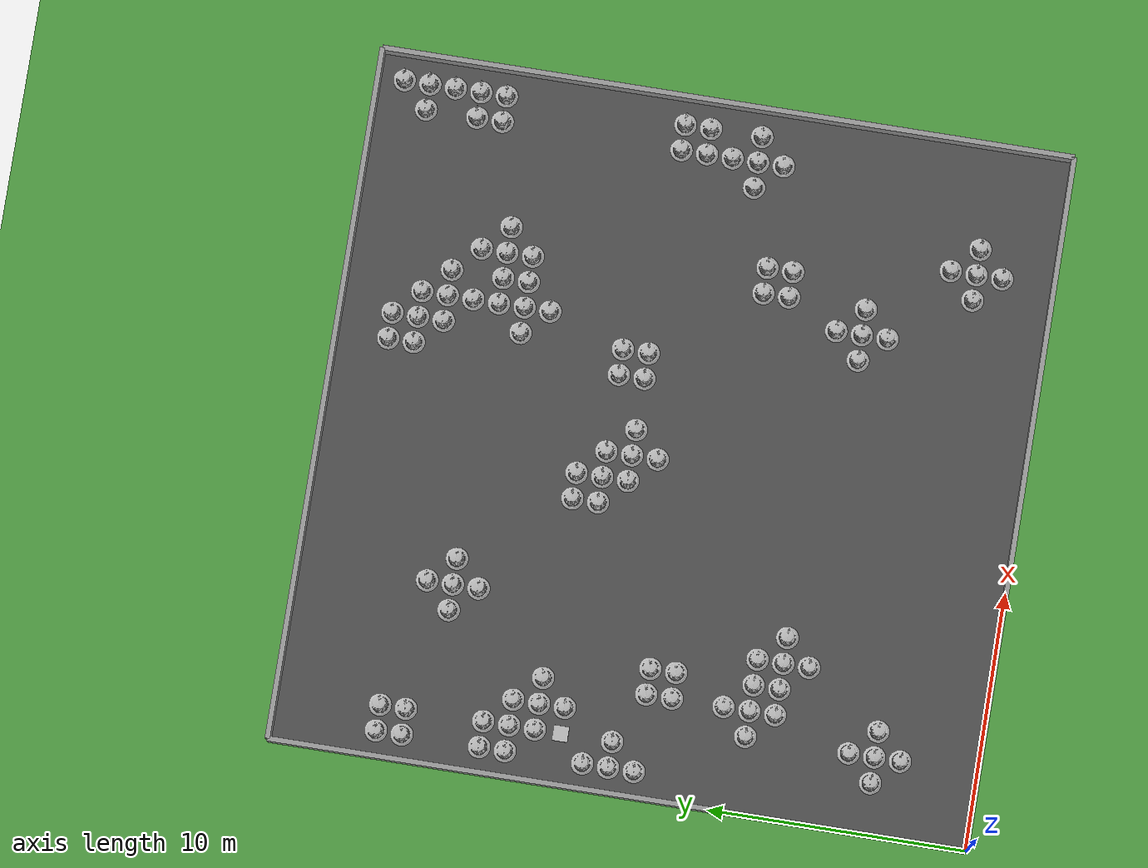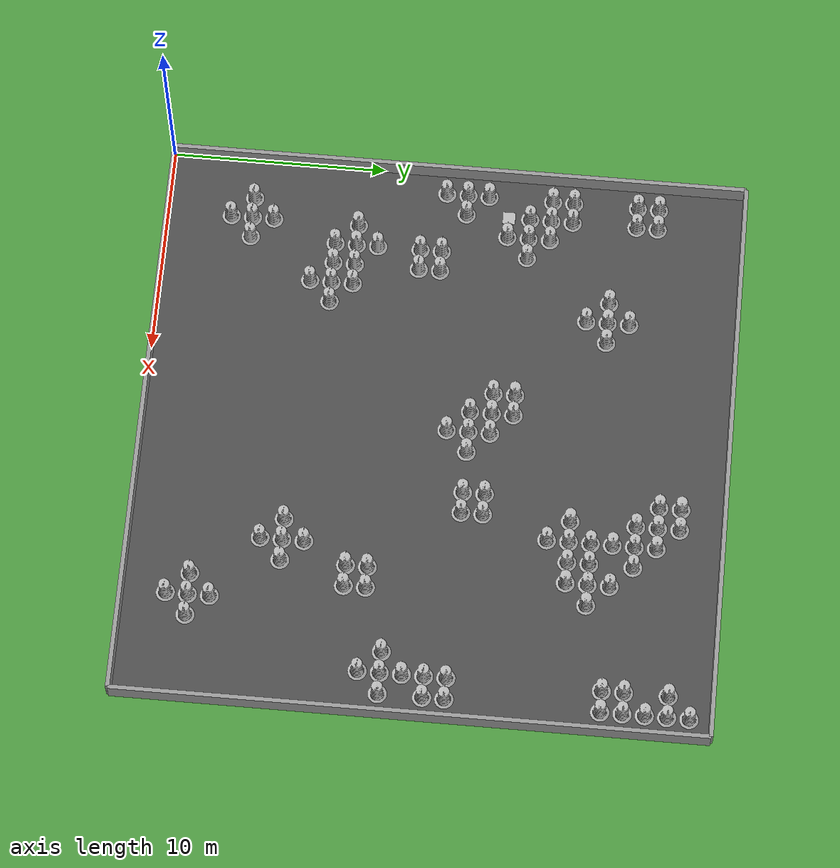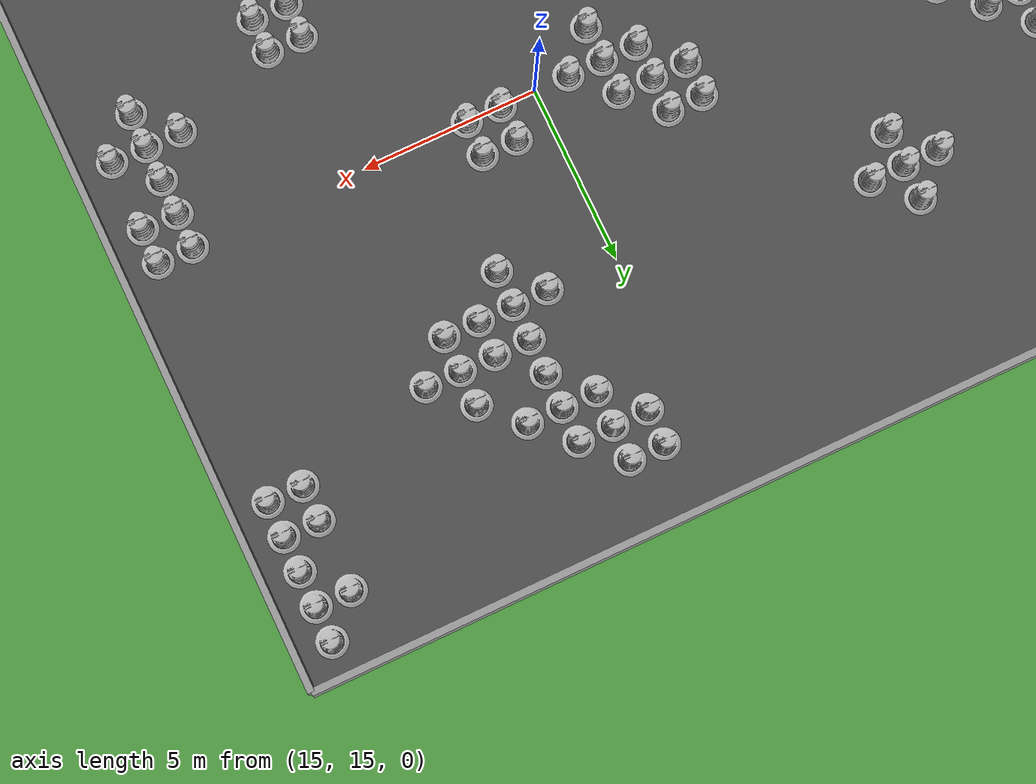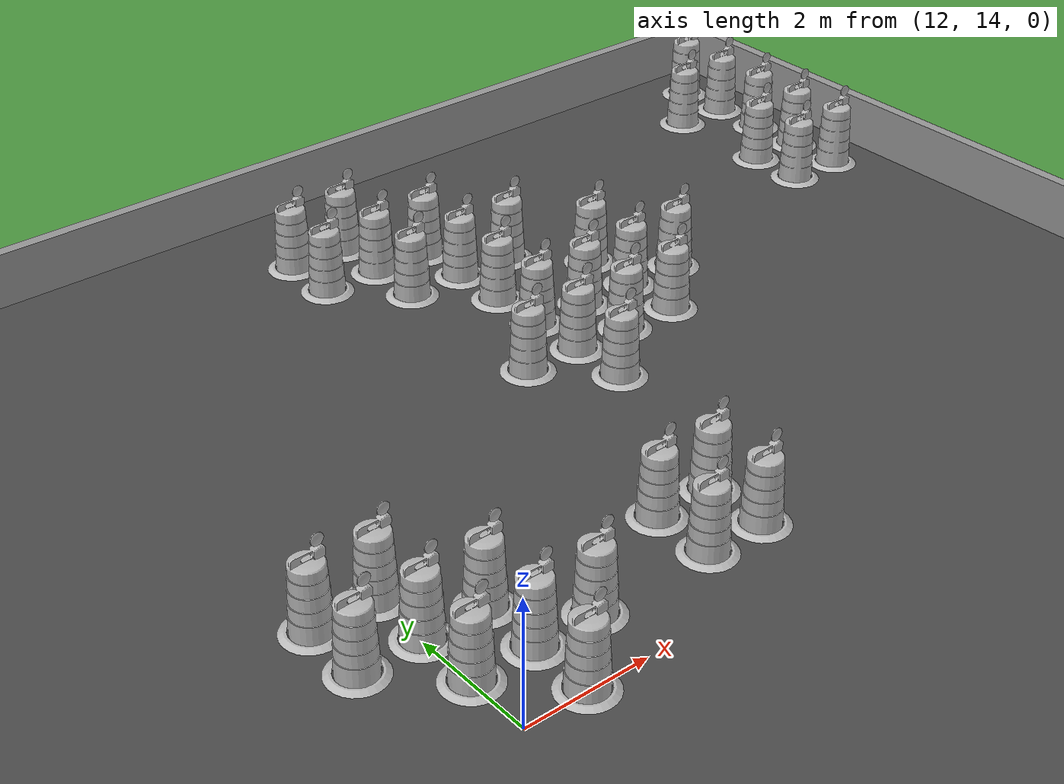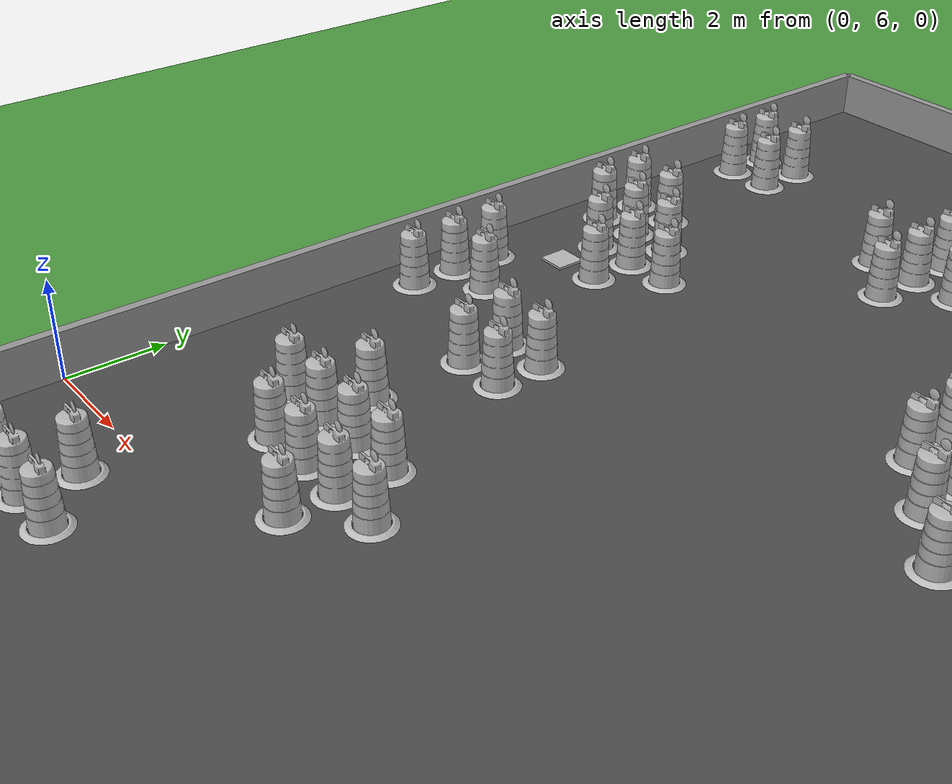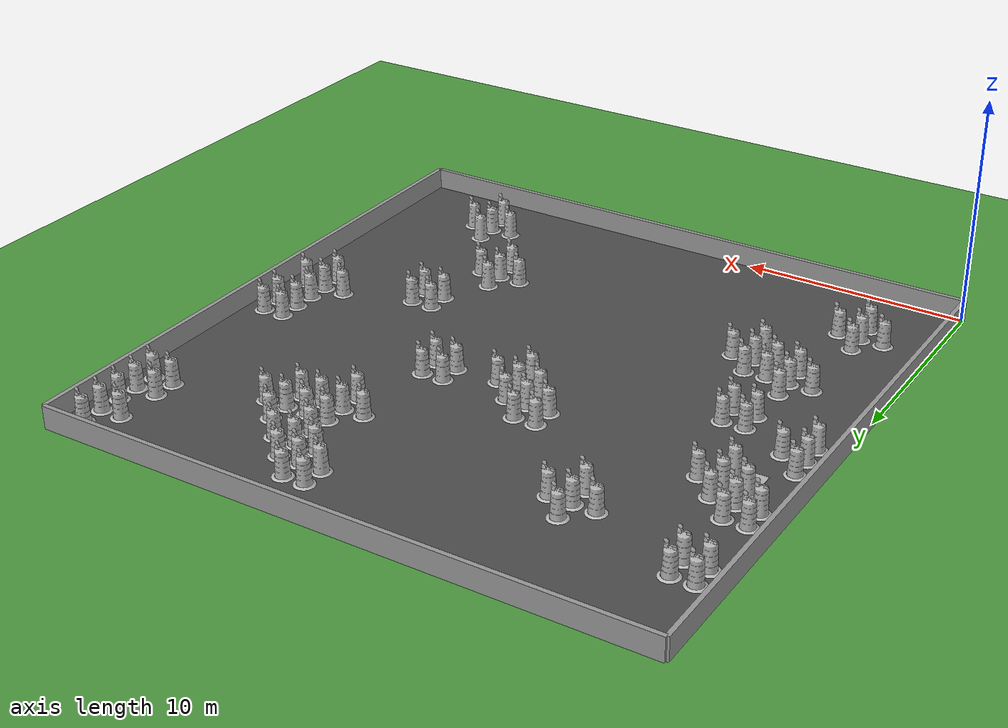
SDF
<sdf version="1.4">
 <world name="default">
  <model name="vrc_driving_terrain">
   <static>1</static>
   <link name="grass_plane">
    <visual name="visual_0">
     <cast_shadows>0</cast_shadows>
     <geometry><plane><normal>0 0 1</normal><size>150 150</size></plane></geometry>
     <material>
      <script>
       <uri>model://vrc_driving_terrain/materials/scripts</uri>
       <uri>model://vrc_driving_terrain/materials/textures</uri>
       <name>vrc/grass</name>
      </script>
     </material>
    </visual>
   </link>
   <pose>0 0 0.01 0 -0 0</pose>
  </model>
  <include><uri>model://ground_plane</uri></include>
  <include><uri>model://sun</uri></include>
  <plugin filename="librotors_gazebo_ros_interface_plugin.so" name="ros_interface_plugin"/>
  <spherical_coordinates>
   <surface_model>EARTH_WGS84</surface_model>
   <latitude_deg>47.3667</latitude_deg>
   <longitude_deg>8.5500</longitude_deg>
   <elevation>500.0</elevation>
   <heading_deg>0</heading_deg>
  </spherical_coordinates>
  <physics type="ode">
   <ode>
    <solver><type>quick</type><iters>1000</iters><sor>1.3</sor></solver>
    <constraints>
     <cfm>0</cfm>
     <erp>0.2</erp>
     <contact_max_correcting_vel>100</contact_max_correcting_vel>
     <contact_surface_layer>0.001</contact_surface_layer>
    </constraints>
   </ode>
   <max_step_size>0.01</max_step_size>
   <real_time_factor>1</real_time_factor>
   <real_time_update_rate>100</real_time_update_rate>
   <gravity>0 0 -9.8</gravity>
  </physics>
  <model name="box_target_green">
   <static>1</static>
   <link name="link">
    <pose>2 16 0 0 0 0</pose>
    <collision name="collision"><geometry><box><size>6 6 2</size></box></geometry></collision>
    <visual name="visual">
     <geometry>
      <mesh><uri>model://box_target_green/meshes/mesh.dae</uri><scale>0.1 0.1 0.1</scale></mesh>
     </geometry>
    </visual>
   </link>
  </model>
  <model name="grey_wall">
   <static>1</static>
   <link name="link">
    <visual name="visual">
     <cast_shadows>0</cast_shadows>
     <geometry><box><size>27 0.2 2</size></box></geometry>
     <material>
      <script>
       <uri>model://grey_wall/materials/scripts</uri>
       <uri>model://grey_wall/materials/textures</uri>
       <name>vrc/grey_wall</name>
      </script>
     </material>
    </visual>
   </link>
   <pose>13.5 0 0 0 0 0</pose>
  </model>
  <model name="grey_wall">
   <static>1</static>
   <link name="link">
    <visual name="visual">
     <cast_shadows>0</cast_shadows>
     <geometry><box><size>27 0.2 2</size></box></geometry>
     <material>
      <script>
       <uri>model://grey_wall/materials/scripts</uri>
       <uri>model://grey_wall/materials/textures</uri>
       <name>vrc/grey_wall</name>
      </script>
     </material>
    </visual>
   </link>
   <pose>0 13.5 0 0 0 1.57079632679</pose>
  </model>
  <model name="grey_wall">
   <static>1</static>
   <link name="link">
    <visual name="visual">
     <cast_shadows>0</cast_shadows>
     <geometry><box><size>27 0.2 2</size></box></geometry>
     <material>
      <script>
       <uri>model://grey_wall/materials/scripts</uri>
       <uri>model://grey_wall/materials/textures</uri>
       <name>vrc/grey_wall</name>
      </script>
     </material>
    </visual>
   </link>
   <pose>27 13.5 0 0 0 -1.57079632679</pose>
  </model>
  <model name="grey_wall">
   <static>1</static>
   <link name="link">
    <visual name="visual">
     <cast_shadows>0</cast_shadows>
     <geometry><box><size>27 0.2 2</size></box></geometry>
     <material>
      <script>
       <uri>model://grey_wall/materials/scripts</uri>
       <uri>model://grey_wall/materials/textures</uri>
       <name>vrc/grey_wall</name>
      </script>
     </material>
    </visual>
   </link>
   <pose>13.5 27 0 0 0 3.14159265359</pose>
  </model>
  <model name="asphalt_plane">
   <static>1</static>
   <link name="link">
    <visual name="visual">
     <cast_shadows>0</cast_shadows>
     <geometry><box><size>27 27 0.1</size></box></geometry>
     <material>
      <script>
       <uri>model://asphalt_plane/materials/scripts</uri>
       <uri>model://asphalt_plane/materials/textures</uri>
       <name>vrc/asphalt</name>
      </script>
     </material>
    </visual>
   </link>
   <pose>13.5 13.5 0 0 0 0</pose>
  </model>
  <model name="Construction Barrel">
   <link name="link">
    <collision name="collision">
     <geometry>
      <mesh><uri>model://construction_barrel/meshes/construction_barrel.dae</uri><scale>1 1 1</scale></mesh>
     </geometry>
    </collision>
    <visual name="visual">
     <geometry><mesh><uri>model://construction_barrel/meshes/construction_barrel.dae</uri></mesh></geometry>
    </visual>
   </link>
   <pose>1 13 0 0 0 0</pose>
   <static>1</static>
  </model>
  <model name="Construction Barrel">
   <link name="link">
    <collision name="collision">
     <geometry>
      <mesh><uri>model://construction_barrel/meshes/construction_barrel.dae</uri><scale>1 1 1</scale></mesh>
     </geometry>
    </collision>
    <visual name="visual">
     <geometry><mesh><uri>model://construction_barrel/meshes/construction_barrel.dae</uri></mesh></geometry>
    </visual>
   </link>
   <pose>1 14 0 0 0 0</pose>
   <static>1</static>
  </model>
  <model name="Construction Barrel">
   <link name="link">
    <collision name="collision">
     <geometry>
      <mesh><uri>model://construction_barrel/meshes/construction_barrel.dae</uri><scale>1 1 1</scale></mesh>
     </geometry>
    </collision>
    <visual name="visual">
     <geometry><mesh><uri>model://construction_barrel/meshes/construction_barrel.dae</uri></mesh></geometry>
    </visual>
   </link>
   <pose>1 15 0 0 0 0</pose>
   <static>1</static>
  </model>
  <model name="Construction Barrel">
   <link name="link">
    <collision name="collision">
     <geometry>
      <mesh><uri>model://construction_barrel/meshes/construction_barrel.dae</uri><scale>1 1 1</scale></mesh>
     </geometry>
    </collision>
    <visual name="visual">
     <geometry><mesh><uri>model://construction_barrel/meshes/construction_barrel.dae</uri></mesh></geometry>
    </visual>
   </link>
   <pose>1 18 0 0 0 0</pose>
   <static>1</static>
  </model>
  <model name="Construction Barrel">
   <link name="link">
    <collision name="collision">
     <geometry>
      <mesh><uri>model://construction_barrel/meshes/construction_barrel.dae</uri><scale>1 1 1</scale></mesh>
     </geometry>
    </collision>
    <visual name="visual">
     <geometry><mesh><uri>model://construction_barrel/meshes/construction_barrel.dae</uri></mesh></geometry>
    </visual>
   </link>
   <pose>1 19 0 0 0 0</pose>
   <static>1</static>
  </model>
  <model name="Construction Barrel">
   <link name="link">
    <collision name="collision">
     <geometry>
      <mesh><uri>model://construction_barrel/meshes/construction_barrel.dae</uri><scale>1 1 1</scale></mesh>
     </geometry>
    </collision>
    <visual name="visual">
     <geometry><mesh><uri>model://construction_barrel/meshes/construction_barrel.dae</uri></mesh></geometry>
    </visual>
   </link>
   <pose>1 22 0 0 0 0</pose>
   <static>1</static>
  </model>
  <model name="Construction Barrel">
   <link name="link">
    <collision name="collision">
     <geometry>
      <mesh><uri>model://construction_barrel/meshes/construction_barrel.dae</uri><scale>1 1 1</scale></mesh>
     </geometry>
    </collision>
    <visual name="visual">
     <geometry><mesh><uri>model://construction_barrel/meshes/construction_barrel.dae</uri></mesh></geometry>
    </visual>
   </link>
   <pose>1 23 0 0 0 0</pose>
   <static>1</static>
  </model>
  <model name="Construction Barrel">
   <link name="link">
    <collision name="collision">
     <geometry>
      <mesh><uri>model://construction_barrel/meshes/construction_barrel.dae</uri><scale>1 1 1</scale></mesh>
     </geometry>
    </collision>
    <visual name="visual">
     <geometry><mesh><uri>model://construction_barrel/meshes/construction_barrel.dae</uri></mesh></geometry>
    </visual>
   </link>
   <pose>2 4 0 0 0 0</pose>
   <static>1</static>
  </model>
  <model name="Construction Barrel">
   <link name="link">
    <collision name="collision">
     <geometry>
      <mesh><uri>model://construction_barrel/meshes/construction_barrel.dae</uri><scale>1 1 1</scale></mesh>
     </geometry>
    </collision>
    <visual name="visual">
     <geometry><mesh><uri>model://construction_barrel/meshes/construction_barrel.dae</uri></mesh></geometry>
    </visual>
   </link>
   <pose>2 14 0 0 0 0</pose>
   <static>1</static>
  </model>
  <model name="Construction Barrel">
   <link name="link">
    <collision name="collision">
     <geometry>
      <mesh><uri>model://construction_barrel/meshes/construction_barrel.dae</uri><scale>1 1 1</scale></mesh>
     </geometry>
    </collision>
    <visual name="visual">
     <geometry><mesh><uri>model://construction_barrel/meshes/construction_barrel.dae</uri></mesh></geometry>
    </visual>
   </link>
   <pose>2 17 0 0 0 0</pose>
   <static>1</static>
  </model>
  <model name="Construction Barrel">
   <link name="link">
    <collision name="collision">
     <geometry>
      <mesh><uri>model://construction_barrel/meshes/construction_barrel.dae</uri><scale>1 1 1</scale></mesh>
     </geometry>
    </collision>
    <visual name="visual">
     <geometry><mesh><uri>model://construction_barrel/meshes/construction_barrel.dae</uri></mesh></geometry>
    </visual>
   </link>
   <pose>2 18 0 0 0 0</pose>
   <static>1</static>
  </model>
  <model name="Construction Barrel">
   <link name="link">
    <collision name="collision">
     <geometry>
      <mesh><uri>model://construction_barrel/meshes/construction_barrel.dae</uri><scale>1 1 1</scale></mesh>
     </geometry>
    </collision>
    <visual name="visual">
     <geometry><mesh><uri>model://construction_barrel/meshes/construction_barrel.dae</uri></mesh></geometry>
    </visual>
   </link>
   <pose>2 19 0 0 0 0</pose>
   <static>1</static>
  </model>
  <model name="Construction Barrel">
   <link name="link">
    <collision name="collision">
     <geometry>
      <mesh><uri>model://construction_barrel/meshes/construction_barrel.dae</uri><scale>1 1 1</scale></mesh>
     </geometry>
    </collision>
    <visual name="visual">
     <geometry><mesh><uri>model://construction_barrel/meshes/construction_barrel.dae</uri></mesh></geometry>
    </visual>
   </link>
   <pose>2 22 0 0 0 0</pose>
   <static>1</static>
  </model>
  <model name="Construction Barrel">
   <link name="link">
    <collision name="collision">
     <geometry>
      <mesh><uri>model://construction_barrel/meshes/construction_barrel.dae</uri><scale>1 1 1</scale></mesh>
     </geometry>
    </collision>
    <visual name="visual">
     <geometry><mesh><uri>model://construction_barrel/meshes/construction_barrel.dae</uri></mesh></geometry>
    </visual>
   </link>
   <pose>2 23 0 0 0 0</pose>
   <static>1</static>
  </model>
  <model name="Construction Barrel">
   <link name="link">
    <collision name="collision">
     <geometry>
      <mesh><uri>model://construction_barrel/meshes/construction_barrel.dae</uri><scale>1 1 1</scale></mesh>
     </geometry>
    </collision>
    <visual name="visual">
     <geometry><mesh><uri>model://construction_barrel/meshes/construction_barrel.dae</uri></mesh></geometry>
    </visual>
   </link>
   <pose>3 3 0 0 0 0</pose>
   <static>1</static>
  </model>
  <model name="Construction Barrel">
   <link name="link">
    <collision name="collision">
     <geometry>
      <mesh><uri>model://construction_barrel/meshes/construction_barrel.dae</uri><scale>1 1 1</scale></mesh>
     </geometry>
    </collision>
    <visual name="visual">
     <geometry><mesh><uri>model://construction_barrel/meshes/construction_barrel.dae</uri></mesh></geometry>
    </visual>
   </link>
   <pose>3 4 0 0 0 0</pose>
   <static>1</static>
  </model>
  <model name="Construction Barrel">
   <link name="link">
    <collision name="collision">
     <geometry>
      <mesh><uri>model://construction_barrel/meshes/construction_barrel.dae</uri><scale>1 1 1</scale></mesh>
     </geometry>
    </collision>
    <visual name="visual">
     <geometry><mesh><uri>model://construction_barrel/meshes/construction_barrel.dae</uri></mesh></geometry>
    </visual>
   </link>
   <pose>3 5 0 0 0 0</pose>
   <static>1</static>
  </model>
  <model name="Construction Barrel">
   <link name="link">
    <collision name="collision">
     <geometry>
      <mesh><uri>model://construction_barrel/meshes/construction_barrel.dae</uri><scale>1 1 1</scale></mesh>
     </geometry>
    </collision>
    <visual name="visual">
     <geometry><mesh><uri>model://construction_barrel/meshes/construction_barrel.dae</uri></mesh></geometry>
    </visual>
   </link>
   <pose>3 9 0 0 0 0</pose>
   <static>1</static>
  </model>
  <model name="Construction Barrel">
   <link name="link">
    <collision name="collision">
     <geometry>
      <mesh><uri>model://construction_barrel/meshes/construction_barrel.dae</uri><scale>1 1 1</scale></mesh>
     </geometry>
    </collision>
    <visual name="visual">
     <geometry><mesh><uri>model://construction_barrel/meshes/construction_barrel.dae</uri></mesh></geometry>
    </visual>
   </link>
   <pose>3 16 0 0 0 0</pose>
   <static>1</static>
  </model>
  <model name="Construction Barrel">
   <link name="link">
    <collision name="collision">
     <geometry>
      <mesh><uri>model://construction_barrel/meshes/construction_barrel.dae</uri><scale>1 1 1</scale></mesh>
     </geometry>
    </collision>
    <visual name="visual">
     <geometry><mesh><uri>model://construction_barrel/meshes/construction_barrel.dae</uri></mesh></geometry>
    </visual>
   </link>
   <pose>3 17 0 0 0 0</pose>
   <static>1</static>
  </model>
  <model name="Construction Barrel">
   <link name="link">
    <collision name="collision">
     <geometry>
      <mesh><uri>model://construction_barrel/meshes/construction_barrel.dae</uri><scale>1 1 1</scale></mesh>
     </geometry>
    </collision>
    <visual name="visual">
     <geometry><mesh><uri>model://construction_barrel/meshes/construction_barrel.dae</uri></mesh></geometry>
    </visual>
   </link>
   <pose>3 18 0 0 0 0</pose>
   <static>1</static>
  </model>
  <model name="Construction Barrel">
   <link name="link">
    <collision name="collision">
     <geometry>
      <mesh><uri>model://construction_barrel/meshes/construction_barrel.dae</uri><scale>1 1 1</scale></mesh>
     </geometry>
    </collision>
    <visual name="visual">
     <geometry><mesh><uri>model://construction_barrel/meshes/construction_barrel.dae</uri></mesh></geometry>
    </visual>
   </link>
   <pose>4 4 0 0 0 0</pose>
   <static>1</static>
  </model>
  <model name="Construction Barrel">
   <link name="link">
    <collision name="collision">
     <geometry>
      <mesh><uri>model://construction_barrel/meshes/construction_barrel.dae</uri><scale>1 1 1</scale></mesh>
     </geometry>
    </collision>
    <visual name="visual">
     <geometry><mesh><uri>model://construction_barrel/meshes/construction_barrel.dae</uri></mesh></geometry>
    </visual>
   </link>
   <pose>4 8 0 0 0 0</pose>
   <static>1</static>
  </model>
  <model name="Construction Barrel">
   <link name="link">
    <collision name="collision">
     <geometry>
      <mesh><uri>model://construction_barrel/meshes/construction_barrel.dae</uri><scale>1 1 1</scale></mesh>
     </geometry>
    </collision>
    <visual name="visual">
     <geometry><mesh><uri>model://construction_barrel/meshes/construction_barrel.dae</uri></mesh></geometry>
    </visual>
   </link>
   <pose>4 9 0 0 0 0</pose>
   <static>1</static>
  </model>
  <model name="Construction Barrel">
   <link name="link">
    <collision name="collision">
     <geometry>
      <mesh><uri>model://construction_barrel/meshes/construction_barrel.dae</uri><scale>1 1 1</scale></mesh>
     </geometry>
    </collision>
    <visual name="visual">
     <geometry><mesh><uri>model://construction_barrel/meshes/construction_barrel.dae</uri></mesh></geometry>
    </visual>
   </link>
   <pose>4 10 0 0 0 0</pose>
   <static>1</static>
  </model>
  <model name="Construction Barrel">
   <link name="link">
    <collision name="collision">
     <geometry>
      <mesh><uri>model://construction_barrel/meshes/construction_barrel.dae</uri><scale>1 1 1</scale></mesh>
     </geometry>
    </collision>
    <visual name="visual">
     <geometry><mesh><uri>model://construction_barrel/meshes/construction_barrel.dae</uri></mesh></geometry>
    </visual>
   </link>
   <pose>4 12 0 0 0 0</pose>
   <static>1</static>
  </model>
  <model name="Construction Barrel">
   <link name="link">
    <collision name="collision">
     <geometry>
      <mesh><uri>model://construction_barrel/meshes/construction_barrel.dae</uri><scale>1 1 1</scale></mesh>
     </geometry>
    </collision>
    <visual name="visual">
     <geometry><mesh><uri>model://construction_barrel/meshes/construction_barrel.dae</uri></mesh></geometry>
    </visual>
   </link>
   <pose>4 13 0 0 0 0</pose>
   <static>1</static>
  </model>
  <model name="Construction Barrel">
   <link name="link">
    <collision name="collision">
     <geometry>
      <mesh><uri>model://construction_barrel/meshes/construction_barrel.dae</uri><scale>1 1 1</scale></mesh>
     </geometry>
    </collision>
    <visual name="visual">
     <geometry><mesh><uri>model://construction_barrel/meshes/construction_barrel.dae</uri></mesh></geometry>
    </visual>
   </link>
   <pose>4 17 0 0 0 0</pose>
   <static>1</static>
  </model>
  <model name="Construction Barrel">
   <link name="link">
    <collision name="collision">
     <geometry>
      <mesh><uri>model://construction_barrel/meshes/construction_barrel.dae</uri><scale>1 1 1</scale></mesh>
     </geometry>
    </collision>
    <visual name="visual">
     <geometry><mesh><uri>model://construction_barrel/meshes/construction_barrel.dae</uri></mesh></geometry>
    </visual>
   </link>
   <pose>5 8 0 0 0 0</pose>
   <static>1</static>
  </model>
  <model name="Construction Barrel">
   <link name="link">
    <collision name="collision">
     <geometry>
      <mesh><uri>model://construction_barrel/meshes/construction_barrel.dae</uri><scale>1 1 1</scale></mesh>
     </geometry>
    </collision>
    <visual name="visual">
     <geometry><mesh><uri>model://construction_barrel/meshes/construction_barrel.dae</uri></mesh></geometry>
    </visual>
   </link>
   <pose>5 9 0 0 0 0</pose>
   <static>1</static>
  </model>
  <model name="Construction Barrel">
   <link name="link">
    <collision name="collision">
     <geometry>
      <mesh><uri>model://construction_barrel/meshes/construction_barrel.dae</uri><scale>1 1 1</scale></mesh>
     </geometry>
    </collision>
    <visual name="visual">
     <geometry><mesh><uri>model://construction_barrel/meshes/construction_barrel.dae</uri></mesh></geometry>
    </visual>
   </link>
   <pose>5 12 0 0 0 0</pose>
   <static>1</static>
  </model>
  <model name="Construction Barrel">
   <link name="link">
    <collision name="collision">
     <geometry>
      <mesh><uri>model://construction_barrel/meshes/construction_barrel.dae</uri><scale>1 1 1</scale></mesh>
     </geometry>
    </collision>
    <visual name="visual">
     <geometry><mesh><uri>model://construction_barrel/meshes/construction_barrel.dae</uri></mesh></geometry>
    </visual>
   </link>
   <pose>5 13 0 0 0 0</pose>
   <static>1</static>
  </model>
  <model name="Construction Barrel">
   <link name="link">
    <collision name="collision">
     <geometry>
      <mesh><uri>model://construction_barrel/meshes/construction_barrel.dae</uri><scale>1 1 1</scale></mesh>
     </geometry>
    </collision>
    <visual name="visual">
     <geometry><mesh><uri>model://construction_barrel/meshes/construction_barrel.dae</uri></mesh></geometry>
    </visual>
   </link>
   <pose>6 7 0 0 0 0</pose>
   <static>1</static>
  </model>
  <model name="Construction Barrel">
   <link name="link">
    <collision name="collision">
     <geometry>
      <mesh><uri>model://construction_barrel/meshes/construction_barrel.dae</uri><scale>1 1 1</scale></mesh>
     </geometry>
    </collision>
    <visual name="visual">
     <geometry><mesh><uri>model://construction_barrel/meshes/construction_barrel.dae</uri></mesh></geometry>
    </visual>
   </link>
   <pose>6 8 0 0 0 0</pose>
   <static>1</static>
  </model>
  <model name="Construction Barrel">
   <link name="link">
    <collision name="collision">
     <geometry>
      <mesh><uri>model://construction_barrel/meshes/construction_barrel.dae</uri><scale>1 1 1</scale></mesh>
     </geometry>
    </collision>
    <visual name="visual">
     <geometry><mesh><uri>model://construction_barrel/meshes/construction_barrel.dae</uri></mesh></geometry>
    </visual>
   </link>
   <pose>6 9 0 0 0 0</pose>
   <static>1</static>
  </model>
  <model name="Construction Barrel">
   <link name="link">
    <collision name="collision">
     <geometry>
      <mesh><uri>model://construction_barrel/meshes/construction_barrel.dae</uri><scale>1 1 1</scale></mesh>
     </geometry>
    </collision>
    <visual name="visual">
     <geometry><mesh><uri>model://construction_barrel/meshes/construction_barrel.dae</uri></mesh></geometry>
    </visual>
   </link>
   <pose>6 21 0 0 0 0</pose>
   <static>1</static>
  </model>
  <model name="Construction Barrel">
   <link name="link">
    <collision name="collision">
     <geometry>
      <mesh><uri>model://construction_barrel/meshes/construction_barrel.dae</uri><scale>1 1 1</scale></mesh>
     </geometry>
    </collision>
    <visual name="visual">
     <geometry><mesh><uri>model://construction_barrel/meshes/construction_barrel.dae</uri></mesh></geometry>
    </visual>
   </link>
   <pose>7 8 0 0 0 0</pose>
   <static>1</static>
  </model>
  <model name="Construction Barrel">
   <link name="link">
    <collision name="collision">
     <geometry>
      <mesh><uri>model://construction_barrel/meshes/construction_barrel.dae</uri><scale>1 1 1</scale></mesh>
     </geometry>
    </collision>
    <visual name="visual">
     <geometry><mesh><uri>model://construction_barrel/meshes/construction_barrel.dae</uri></mesh></geometry>
    </visual>
   </link>
   <pose>7 20 0 0 0 0</pose>
   <static>1</static>
  </model>
  <model name="Construction Barrel">
   <link name="link">
    <collision name="collision">
     <geometry>
      <mesh><uri>model://construction_barrel/meshes/construction_barrel.dae</uri><scale>1 1 1</scale></mesh>
     </geometry>
    </collision>
    <visual name="visual">
     <geometry><mesh><uri>model://construction_barrel/meshes/construction_barrel.dae</uri></mesh></geometry>
    </visual>
   </link>
   <pose>7 21 0 0 0 0</pose>
   <static>1</static>
  </model>
  <model name="Construction Barrel">
   <link name="link">
    <collision name="collision">
     <geometry>
      <mesh><uri>model://construction_barrel/meshes/construction_barrel.dae</uri><scale>1 1 1</scale></mesh>
     </geometry>
    </collision>
    <visual name="visual">
     <geometry><mesh><uri>model://construction_barrel/meshes/construction_barrel.dae</uri></mesh></geometry>
    </visual>
   </link>
   <pose>7 22 0 0 0 0</pose>
   <static>1</static>
  </model>
  <model name="Construction Barrel">
   <link name="link">
    <collision name="collision">
     <geometry>
      <mesh><uri>model://construction_barrel/meshes/construction_barrel.dae</uri><scale>1 1 1</scale></mesh>
     </geometry>
    </collision>
    <visual name="visual">
     <geometry><mesh><uri>model://construction_barrel/meshes/construction_barrel.dae</uri></mesh></geometry>
    </visual>
   </link>
   <pose>8 21 0 0 0 0</pose>
   <static>1</static>
  </model>
  <model name="Construction Barrel">
   <link name="link">
    <collision name="collision">
     <geometry>
      <mesh><uri>model://construction_barrel/meshes/construction_barrel.dae</uri><scale>1 1 1</scale></mesh>
     </geometry>
    </collision>
    <visual name="visual">
     <geometry><mesh><uri>model://construction_barrel/meshes/construction_barrel.dae</uri></mesh></geometry>
    </visual>
   </link>
   <pose>11 16 0 0 0 0</pose>
   <static>1</static>
  </model>
  <model name="Construction Barrel">
   <link name="link">
    <collision name="collision">
     <geometry>
      <mesh><uri>model://construction_barrel/meshes/construction_barrel.dae</uri><scale>1 1 1</scale></mesh>
     </geometry>
    </collision>
    <visual name="visual">
     <geometry><mesh><uri>model://construction_barrel/meshes/construction_barrel.dae</uri></mesh></geometry>
    </visual>
   </link>
   <pose>11 17 0 0 0 0</pose>
   <static>1</static>
  </model>
  <model name="Construction Barrel">
   <link name="link">
    <collision name="collision">
     <geometry>
      <mesh><uri>model://construction_barrel/meshes/construction_barrel.dae</uri><scale>1 1 1</scale></mesh>
     </geometry>
    </collision>
    <visual name="visual">
     <geometry><mesh><uri>model://construction_barrel/meshes/construction_barrel.dae</uri></mesh></geometry>
    </visual>
   </link>
   <pose>12 15 0 0 0 0</pose>
   <static>1</static>
  </model>
  <model name="Construction Barrel">
   <link name="link">
    <collision name="collision">
     <geometry>
      <mesh><uri>model://construction_barrel/meshes/construction_barrel.dae</uri><scale>1 1 1</scale></mesh>
     </geometry>
    </collision>
    <visual name="visual">
     <geometry><mesh><uri>model://construction_barrel/meshes/construction_barrel.dae</uri></mesh></geometry>
    </visual>
   </link>
   <pose>12 16 0 0 0 0</pose>
   <static>1</static>
  </model>
  <model name="Construction Barrel">
   <link name="link">
    <collision name="collision">
     <geometry>
      <mesh><uri>model://construction_barrel/meshes/construction_barrel.dae</uri><scale>1 1 1</scale></mesh>
     </geometry>
    </collision>
    <visual name="visual">
     <geometry><mesh><uri>model://construction_barrel/meshes/construction_barrel.dae</uri></mesh></geometry>
    </visual>
   </link>
   <pose>12 17 0 0 0 0</pose>
   <static>1</static>
  </model>
  <model name="Construction Barrel">
   <link name="link">
    <collision name="collision">
     <geometry>
      <mesh><uri>model://construction_barrel/meshes/construction_barrel.dae</uri><scale>1 1 1</scale></mesh>
     </geometry>
    </collision>
    <visual name="visual">
     <geometry><mesh><uri>model://construction_barrel/meshes/construction_barrel.dae</uri></mesh></geometry>
    </visual>
   </link>
   <pose>13 14 0 0 0 0</pose>
   <static>1</static>
  </model>
  <model name="Construction Barrel">
   <link name="link">
    <collision name="collision">
     <geometry>
      <mesh><uri>model://construction_barrel/meshes/construction_barrel.dae</uri><scale>1 1 1</scale></mesh>
     </geometry>
    </collision>
    <visual name="visual">
     <geometry><mesh><uri>model://construction_barrel/meshes/construction_barrel.dae</uri></mesh></geometry>
    </visual>
   </link>
   <pose>13 15 0 0 0 0</pose>
   <static>1</static>
  </model>
  <model name="Construction Barrel">
   <link name="link">
    <collision name="collision">
     <geometry>
      <mesh><uri>model://construction_barrel/meshes/construction_barrel.dae</uri><scale>1 1 1</scale></mesh>
     </geometry>
    </collision>
    <visual name="visual">
     <geometry><mesh><uri>model://construction_barrel/meshes/construction_barrel.dae</uri></mesh></geometry>
    </visual>
   </link>
   <pose>13 16 0 0 0 0</pose>
   <static>1</static>
  </model>
  <model name="Construction Barrel">
   <link name="link">
    <collision name="collision">
     <geometry>
      <mesh><uri>model://construction_barrel/meshes/construction_barrel.dae</uri><scale>1 1 1</scale></mesh>
     </geometry>
    </collision>
    <visual name="visual">
     <geometry><mesh><uri>model://construction_barrel/meshes/construction_barrel.dae</uri></mesh></geometry>
    </visual>
   </link>
   <pose>14 15 0 0 0 0</pose>
   <static>1</static>
  </model>
  <model name="Construction Barrel">
   <link name="link">
    <collision name="collision">
     <geometry>
      <mesh><uri>model://construction_barrel/meshes/construction_barrel.dae</uri><scale>1 1 1</scale></mesh>
     </geometry>
    </collision>
    <visual name="visual">
     <geometry><mesh><uri>model://construction_barrel/meshes/construction_barrel.dae</uri></mesh></geometry>
    </visual>
   </link>
   <pose>16 15 0 0 0 0</pose>
   <static>1</static>
  </model>
  <model name="Construction Barrel">
   <link name="link">
    <collision name="collision">
     <geometry>
      <mesh><uri>model://construction_barrel/meshes/construction_barrel.dae</uri><scale>1 1 1</scale></mesh>
     </geometry>
    </collision>
    <visual name="visual">
     <geometry><mesh><uri>model://construction_barrel/meshes/construction_barrel.dae</uri></mesh></geometry>
    </visual>
   </link>
   <pose>16 16 0 0 0 0</pose>
   <static>1</static>
  </model>
  <model name="Construction Barrel">
   <link name="link">
    <collision name="collision">
     <geometry>
      <mesh><uri>model://construction_barrel/meshes/construction_barrel.dae</uri><scale>1 1 1</scale></mesh>
     </geometry>
    </collision>
    <visual name="visual">
     <geometry><mesh><uri>model://construction_barrel/meshes/construction_barrel.dae</uri></mesh></geometry>
    </visual>
   </link>
   <pose>16 24 0 0 0 0</pose>
   <static>1</static>
  </model>
  <model name="Construction Barrel">
   <link name="link">
    <collision name="collision">
     <geometry>
      <mesh><uri>model://construction_barrel/meshes/construction_barrel.dae</uri><scale>1 1 1</scale></mesh>
     </geometry>
    </collision>
    <visual name="visual">
     <geometry><mesh><uri>model://construction_barrel/meshes/construction_barrel.dae</uri></mesh></geometry>
    </visual>
   </link>
   <pose>16 25 0 0 0 0</pose>
   <static>1</static>
  </model>
  <model name="Construction Barrel">
   <link name="link">
    <collision name="collision">
     <geometry>
      <mesh><uri>model://construction_barrel/meshes/construction_barrel.dae</uri><scale>1 1 1</scale></mesh>
     </geometry>
    </collision>
    <visual name="visual">
     <geometry><mesh><uri>model://construction_barrel/meshes/construction_barrel.dae</uri></mesh></geometry>
    </visual>
   </link>
   <pose>17 15 0 0 0 0</pose>
   <static>1</static>
  </model>
  <model name="Construction Barrel">
   <link name="link">
    <collision name="collision">
     <geometry>
      <mesh><uri>model://construction_barrel/meshes/construction_barrel.dae</uri><scale>1 1 1</scale></mesh>
     </geometry>
    </collision>
    <visual name="visual">
     <geometry><mesh><uri>model://construction_barrel/meshes/construction_barrel.dae</uri></mesh></geometry>
    </visual>
   </link>
   <pose>17 16 0 0 0 0</pose>
   <static>1</static>
  </model>
  <model name="Construction Barrel">
   <link name="link">
    <collision name="collision">
     <geometry>
      <mesh><uri>model://construction_barrel/meshes/construction_barrel.dae</uri><scale>1 1 1</scale></mesh>
     </geometry>
    </collision>
    <visual name="visual">
     <geometry><mesh><uri>model://construction_barrel/meshes/construction_barrel.dae</uri></mesh></geometry>
    </visual>
   </link>
   <pose>17 20 0 0 0 0</pose>
   <static>1</static>
  </model>
  <model name="Construction Barrel">
   <link name="link">
    <collision name="collision">
     <geometry>
      <mesh><uri>model://construction_barrel/meshes/construction_barrel.dae</uri><scale>1 1 1</scale></mesh>
     </geometry>
    </collision>
    <visual name="visual">
     <geometry><mesh><uri>model://construction_barrel/meshes/construction_barrel.dae</uri></mesh></geometry>
    </visual>
   </link>
   <pose>17 23 0 0 0 0</pose>
   <static>1</static>
  </model>
  <model name="Construction Barrel">
   <link name="link">
    <collision name="collision">
     <geometry>
      <mesh><uri>model://construction_barrel/meshes/construction_barrel.dae</uri><scale>1 1 1</scale></mesh>
     </geometry>
    </collision>
    <visual name="visual">
     <geometry><mesh><uri>model://construction_barrel/meshes/construction_barrel.dae</uri></mesh></geometry>
    </visual>
   </link>
   <pose>17 24 0 0 0 0</pose>
   <static>1</static>
  </model>
  <model name="Construction Barrel">
   <link name="link">
    <collision name="collision">
     <geometry>
      <mesh><uri>model://construction_barrel/meshes/construction_barrel.dae</uri><scale>1 1 1</scale></mesh>
     </geometry>
    </collision>
    <visual name="visual">
     <geometry><mesh><uri>model://construction_barrel/meshes/construction_barrel.dae</uri></mesh></geometry>
    </visual>
   </link>
   <pose>17 25 0 0 0 0</pose>
   <static>1</static>
  </model>
  <model name="Construction Barrel">
   <link name="link">
    <collision name="collision">
     <geometry>
      <mesh><uri>model://construction_barrel/meshes/construction_barrel.dae</uri><scale>1 1 1</scale></mesh>
     </geometry>
    </collision>
    <visual name="visual">
     <geometry><mesh><uri>model://construction_barrel/meshes/construction_barrel.dae</uri></mesh></geometry>
    </visual>
   </link>
   <pose>18 7 0 0 0 0</pose>
   <static>1</static>
  </model>
  <model name="Construction Barrel">
   <link name="link">
    <collision name="collision">
     <geometry>
      <mesh><uri>model://construction_barrel/meshes/construction_barrel.dae</uri><scale>1 1 1</scale></mesh>
     </geometry>
    </collision>
    <visual name="visual">
     <geometry><mesh><uri>model://construction_barrel/meshes/construction_barrel.dae</uri></mesh></geometry>
    </visual>
   </link>
   <pose>18 19 0 0 0 0</pose>
   <static>1</static>
  </model>
  <model name="Construction Barrel">
   <link name="link">
    <collision name="collision">
     <geometry>
      <mesh><uri>model://construction_barrel/meshes/construction_barrel.dae</uri><scale>1 1 1</scale></mesh>
     </geometry>
    </collision>
    <visual name="visual">
     <geometry><mesh><uri>model://construction_barrel/meshes/construction_barrel.dae</uri></mesh></geometry>
    </visual>
   </link>
   <pose>18 20 0 0 0 0</pose>
   <static>1</static>
  </model>
  <model name="Construction Barrel">
   <link name="link">
    <collision name="collision">
     <geometry>
      <mesh><uri>model://construction_barrel/meshes/construction_barrel.dae</uri><scale>1 1 1</scale></mesh>
     </geometry>
    </collision>
    <visual name="visual">
     <geometry><mesh><uri>model://construction_barrel/meshes/construction_barrel.dae</uri></mesh></geometry>
    </visual>
   </link>
   <pose>18 21 0 0 0 0</pose>
   <static>1</static>
  </model>
  <model name="Construction Barrel">
   <link name="link">
    <collision name="collision">
     <geometry>
      <mesh><uri>model://construction_barrel/meshes/construction_barrel.dae</uri><scale>1 1 1</scale></mesh>
     </geometry>
    </collision>
    <visual name="visual">
     <geometry><mesh><uri>model://construction_barrel/meshes/construction_barrel.dae</uri></mesh></geometry>
    </visual>
   </link>
   <pose>18 22 0 0 0 0</pose>
   <static>1</static>
  </model>
  <model name="Construction Barrel">
   <link name="link">
    <collision name="collision">
     <geometry>
      <mesh><uri>model://construction_barrel/meshes/construction_barrel.dae</uri><scale>1 1 1</scale></mesh>
     </geometry>
    </collision>
    <visual name="visual">
     <geometry><mesh><uri>model://construction_barrel/meshes/construction_barrel.dae</uri></mesh></geometry>
    </visual>
   </link>
   <pose>18 23 0 0 0 0</pose>
   <static>1</static>
  </model>
  <model name="Construction Barrel">
   <link name="link">
    <collision name="collision">
     <geometry>
      <mesh><uri>model://construction_barrel/meshes/construction_barrel.dae</uri><scale>1 1 1</scale></mesh>
     </geometry>
    </collision>
    <visual name="visual">
     <geometry><mesh><uri>model://construction_barrel/meshes/construction_barrel.dae</uri></mesh></geometry>
    </visual>
   </link>
   <pose>18 24 0 0 0 0</pose>
   <static>1</static>
  </model>
  <model name="Construction Barrel">
   <link name="link">
    <collision name="collision">
     <geometry>
      <mesh><uri>model://construction_barrel/meshes/construction_barrel.dae</uri><scale>1 1 1</scale></mesh>
     </geometry>
    </collision>
    <visual name="visual">
     <geometry><mesh><uri>model://construction_barrel/meshes/construction_barrel.dae</uri></mesh></geometry>
    </visual>
   </link>
   <pose>19 6 0 0 0 0</pose>
   <static>1</static>
  </model>
  <model name="Construction Barrel">
   <link name="link">
    <collision name="collision">
     <geometry>
      <mesh><uri>model://construction_barrel/meshes/construction_barrel.dae</uri><scale>1 1 1</scale></mesh>
     </geometry>
    </collision>
    <visual name="visual">
     <geometry><mesh><uri>model://construction_barrel/meshes/construction_barrel.dae</uri></mesh></geometry>
    </visual>
   </link>
   <pose>19 7 0 0 0 0</pose>
   <static>1</static>
  </model>
  <model name="Construction Barrel">
   <link name="link">
    <collision name="collision">
     <geometry>
      <mesh><uri>model://construction_barrel/meshes/construction_barrel.dae</uri><scale>1 1 1</scale></mesh>
     </geometry>
    </collision>
    <visual name="visual">
     <geometry><mesh><uri>model://construction_barrel/meshes/construction_barrel.dae</uri></mesh></geometry>
    </visual>
   </link>
   <pose>19 8 0 0 0 0</pose>
   <static>1</static>
  </model>
  <model name="Construction Barrel">
   <link name="link">
    <collision name="collision">
     <geometry>
      <mesh><uri>model://construction_barrel/meshes/construction_barrel.dae</uri><scale>1 1 1</scale></mesh>
     </geometry>
    </collision>
    <visual name="visual">
     <geometry><mesh><uri>model://construction_barrel/meshes/construction_barrel.dae</uri></mesh></geometry>
    </visual>
   </link>
   <pose>19 20 0 0 0 0</pose>
   <static>1</static>
  </model>
  <model name="Construction Barrel">
   <link name="link">
    <collision name="collision">
     <geometry>
      <mesh><uri>model://construction_barrel/meshes/construction_barrel.dae</uri><scale>1 1 1</scale></mesh>
     </geometry>
    </collision>
    <visual name="visual">
     <geometry><mesh><uri>model://construction_barrel/meshes/construction_barrel.dae</uri></mesh></geometry>
    </visual>
   </link>
   <pose>19 21 0 0 0 0</pose>
   <static>1</static>
  </model>
  <model name="Construction Barrel">
   <link name="link">
    <collision name="collision">
     <geometry>
      <mesh><uri>model://construction_barrel/meshes/construction_barrel.dae</uri><scale>1 1 1</scale></mesh>
     </geometry>
    </collision>
    <visual name="visual">
     <geometry><mesh><uri>model://construction_barrel/meshes/construction_barrel.dae</uri></mesh></geometry>
    </visual>
   </link>
   <pose>19 23 0 0 0 0</pose>
   <static>1</static>
  </model>
  <model name="Construction Barrel">
   <link name="link">
    <collision name="collision">
     <geometry>
      <mesh><uri>model://construction_barrel/meshes/construction_barrel.dae</uri><scale>1 1 1</scale></mesh>
     </geometry>
    </collision>
    <visual name="visual">
     <geometry><mesh><uri>model://construction_barrel/meshes/construction_barrel.dae</uri></mesh></geometry>
    </visual>
   </link>
   <pose>20 7 0 0 0 0</pose>
   <static>1</static>
  </model>
  <model name="Construction Barrel">
   <link name="link">
    <collision name="collision">
     <geometry>
      <mesh><uri>model://construction_barrel/meshes/construction_barrel.dae</uri><scale>1 1 1</scale></mesh>
     </geometry>
    </collision>
    <visual name="visual">
     <geometry><mesh><uri>model://construction_barrel/meshes/construction_barrel.dae</uri></mesh></geometry>
    </visual>
   </link>
   <pose>20 10 0 0 0 0</pose>
   <static>1</static>
  </model>
  <model name="Construction Barrel">
   <link name="link">
    <collision name="collision">
     <geometry>
      <mesh><uri>model://construction_barrel/meshes/construction_barrel.dae</uri><scale>1 1 1</scale></mesh>
     </geometry>
    </collision>
    <visual name="visual">
     <geometry><mesh><uri>model://construction_barrel/meshes/construction_barrel.dae</uri></mesh></geometry>
    </visual>
   </link>
   <pose>20 11 0 0 0 0</pose>
   <static>1</static>
  </model>
  <model name="Construction Barrel">
   <link name="link">
    <collision name="collision">
     <geometry>
      <mesh><uri>model://construction_barrel/meshes/construction_barrel.dae</uri><scale>1 1 1</scale></mesh>
     </geometry>
    </collision>
    <visual name="visual">
     <geometry><mesh><uri>model://construction_barrel/meshes/construction_barrel.dae</uri></mesh></geometry>
    </visual>
   </link>
   <pose>20 20 0 0 0 0</pose>
   <static>1</static>
  </model>
  <model name="Construction Barrel">
   <link name="link">
    <collision name="collision">
     <geometry>
      <mesh><uri>model://construction_barrel/meshes/construction_barrel.dae</uri><scale>1 1 1</scale></mesh>
     </geometry>
    </collision>
    <visual name="visual">
     <geometry><mesh><uri>model://construction_barrel/meshes/construction_barrel.dae</uri></mesh></geometry>
    </visual>
   </link>
   <pose>20 21 0 0 0 0</pose>
   <static>1</static>
  </model>
  <model name="Construction Barrel">
   <link name="link">
    <collision name="collision">
     <geometry>
      <mesh><uri>model://construction_barrel/meshes/construction_barrel.dae</uri><scale>1 1 1</scale></mesh>
     </geometry>
    </collision>
    <visual name="visual">
     <geometry><mesh><uri>model://construction_barrel/meshes/construction_barrel.dae</uri></mesh></geometry>
    </visual>
   </link>
   <pose>20 22 0 0 0 0</pose>
   <static>1</static>
  </model>
  <model name="Construction Barrel">
   <link name="link">
    <collision name="collision">
     <geometry>
      <mesh><uri>model://construction_barrel/meshes/construction_barrel.dae</uri><scale>1 1 1</scale></mesh>
     </geometry>
    </collision>
    <visual name="visual">
     <geometry><mesh><uri>model://construction_barrel/meshes/construction_barrel.dae</uri></mesh></geometry>
    </visual>
   </link>
   <pose>21 3 0 0 0 0</pose>
   <static>1</static>
  </model>
  <model name="Construction Barrel">
   <link name="link">
    <collision name="collision">
     <geometry>
      <mesh><uri>model://construction_barrel/meshes/construction_barrel.dae</uri><scale>1 1 1</scale></mesh>
     </geometry>
    </collision>
    <visual name="visual">
     <geometry><mesh><uri>model://construction_barrel/meshes/construction_barrel.dae</uri></mesh></geometry>
    </visual>
   </link>
   <pose>21 10 0 0 0 0</pose>
   <static>1</static>
  </model>
  <model name="Construction Barrel">
   <link name="link">
    <collision name="collision">
     <geometry>
      <mesh><uri>model://construction_barrel/meshes/construction_barrel.dae</uri><scale>1 1 1</scale></mesh>
     </geometry>
    </collision>
    <visual name="visual">
     <geometry><mesh><uri>model://construction_barrel/meshes/construction_barrel.dae</uri></mesh></geometry>
    </visual>
   </link>
   <pose>21 11 0 0 0 0</pose>
   <static>1</static>
  </model>
  <model name="Construction Barrel">
   <link name="link">
    <collision name="collision">
     <geometry>
      <mesh><uri>model://construction_barrel/meshes/construction_barrel.dae</uri><scale>1 1 1</scale></mesh>
     </geometry>
    </collision>
    <visual name="visual">
     <geometry><mesh><uri>model://construction_barrel/meshes/construction_barrel.dae</uri></mesh></geometry>
    </visual>
   </link>
   <pose>21 21 0 0 0 0</pose>
   <static>1</static>
  </model>
  <model name="Construction Barrel">
   <link name="link">
    <collision name="collision">
     <geometry>
      <mesh><uri>model://construction_barrel/meshes/construction_barrel.dae</uri><scale>1 1 1</scale></mesh>
     </geometry>
    </collision>
    <visual name="visual">
     <geometry><mesh><uri>model://construction_barrel/meshes/construction_barrel.dae</uri></mesh></geometry>
    </visual>
   </link>
   <pose>22 2 0 0 0 0</pose>
   <static>1</static>
  </model>
  <model name="Construction Barrel">
   <link name="link">
    <collision name="collision">
     <geometry>
      <mesh><uri>model://construction_barrel/meshes/construction_barrel.dae</uri><scale>1 1 1</scale></mesh>
     </geometry>
    </collision>
    <visual name="visual">
     <geometry><mesh><uri>model://construction_barrel/meshes/construction_barrel.dae</uri></mesh></geometry>
    </visual>
   </link>
   <pose>22 3 0 0 0 0</pose>
   <static>1</static>
  </model>
  <model name="Construction Barrel">
   <link name="link">
    <collision name="collision">
     <geometry>
      <mesh><uri>model://construction_barrel/meshes/construction_barrel.dae</uri><scale>1 1 1</scale></mesh>
     </geometry>
    </collision>
    <visual name="visual">
     <geometry><mesh><uri>model://construction_barrel/meshes/construction_barrel.dae</uri></mesh></geometry>
    </visual>
   </link>
   <pose>22 4 0 0 0 0</pose>
   <static>1</static>
  </model>
  <model name="Construction Barrel">
   <link name="link">
    <collision name="collision">
     <geometry>
      <mesh><uri>model://construction_barrel/meshes/construction_barrel.dae</uri><scale>1 1 1</scale></mesh>
     </geometry>
    </collision>
    <visual name="visual">
     <geometry><mesh><uri>model://construction_barrel/meshes/construction_barrel.dae</uri></mesh></geometry>
    </visual>
   </link>
   <pose>23 3 0 0 0 0</pose>
   <static>1</static>
  </model>
  <model name="Construction Barrel">
   <link name="link">
    <collision name="collision">
     <geometry>
      <mesh><uri>model://construction_barrel/meshes/construction_barrel.dae</uri><scale>1 1 1</scale></mesh>
     </geometry>
    </collision>
    <visual name="visual">
     <geometry><mesh><uri>model://construction_barrel/meshes/construction_barrel.dae</uri></mesh></geometry>
    </visual>
   </link>
   <pose>24 12 0 0 0 0</pose>
   <static>1</static>
  </model>
  <model name="Construction Barrel">
   <link name="link">
    <collision name="collision">
     <geometry>
      <mesh><uri>model://construction_barrel/meshes/construction_barrel.dae</uri><scale>1 1 1</scale></mesh>
     </geometry>
    </collision>
    <visual name="visual">
     <geometry><mesh><uri>model://construction_barrel/meshes/construction_barrel.dae</uri></mesh></geometry>
    </visual>
   </link>
   <pose>25 11 0 0 0 0</pose>
   <static>1</static>
  </model>
  <model name="Construction Barrel">
   <link name="link">
    <collision name="collision">
     <geometry>
      <mesh><uri>model://construction_barrel/meshes/construction_barrel.dae</uri><scale>1 1 1</scale></mesh>
     </geometry>
    </collision>
    <visual name="visual">
     <geometry><mesh><uri>model://construction_barrel/meshes/construction_barrel.dae</uri></mesh></geometry>
    </visual>
   </link>
   <pose>25 12 0 0 0 0</pose>
   <static>1</static>
  </model>
  <model name="Construction Barrel">
   <link name="link">
    <collision name="collision">
     <geometry>
      <mesh><uri>model://construction_barrel/meshes/construction_barrel.dae</uri><scale>1 1 1</scale></mesh>
     </geometry>
    </collision>
    <visual name="visual">
     <geometry><mesh><uri>model://construction_barrel/meshes/construction_barrel.dae</uri></mesh></geometry>
    </visual>
   </link>
   <pose>25 13 0 0 0 0</pose>
   <static>1</static>
  </model>
  <model name="Construction Barrel">
   <link name="link">
    <collision name="collision">
     <geometry>
      <mesh><uri>model://construction_barrel/meshes/construction_barrel.dae</uri><scale>1 1 1</scale></mesh>
     </geometry>
    </collision>
    <visual name="visual">
     <geometry><mesh><uri>model://construction_barrel/meshes/construction_barrel.dae</uri></mesh></geometry>
    </visual>
   </link>
   <pose>25 14 0 0 0 0</pose>
   <static>1</static>
  </model>
  <model name="Construction Barrel">
   <link name="link">
    <collision name="collision">
     <geometry>
      <mesh><uri>model://construction_barrel/meshes/construction_barrel.dae</uri><scale>1 1 1</scale></mesh>
     </geometry>
    </collision>
    <visual name="visual">
     <geometry><mesh><uri>model://construction_barrel/meshes/construction_barrel.dae</uri></mesh></geometry>
    </visual>
   </link>
   <pose>25 15 0 0 0 0</pose>
   <static>1</static>
  </model>
  <model name="Construction Barrel">
   <link name="link">
    <collision name="collision">
     <geometry>
      <mesh><uri>model://construction_barrel/meshes/construction_barrel.dae</uri><scale>1 1 1</scale></mesh>
     </geometry>
    </collision>
    <visual name="visual">
     <geometry><mesh><uri>model://construction_barrel/meshes/construction_barrel.dae</uri></mesh></geometry>
    </visual>
   </link>
   <pose>25 22 0 0 0 0</pose>
   <static>1</static>
  </model>
  <model name="Construction Barrel">
   <link name="link">
    <collision name="collision">
     <geometry>
      <mesh><uri>model://construction_barrel/meshes/construction_barrel.dae</uri><scale>1 1 1</scale></mesh>
     </geometry>
    </collision>
    <visual name="visual">
     <geometry><mesh><uri>model://construction_barrel/meshes/construction_barrel.dae</uri></mesh></geometry>
    </visual>
   </link>
   <pose>25 23 0 0 0 0</pose>
   <static>1</static>
  </model>
  <model name="Construction Barrel">
   <link name="link">
    <collision name="collision">
     <geometry>
      <mesh><uri>model://construction_barrel/meshes/construction_barrel.dae</uri><scale>1 1 1</scale></mesh>
     </geometry>
    </collision>
    <visual name="visual">
     <geometry><mesh><uri>model://construction_barrel/meshes/construction_barrel.dae</uri></mesh></geometry>
    </visual>
   </link>
   <pose>25 25 0 0 0 0</pose>
   <static>1</static>
  </model>
  <model name="Construction Barrel">
   <link name="link">
    <collision name="collision">
     <geometry>
      <mesh><uri>model://construction_barrel/meshes/construction_barrel.dae</uri><scale>1 1 1</scale></mesh>
     </geometry>
    </collision>
    <visual name="visual">
     <geometry><mesh><uri>model://construction_barrel/meshes/construction_barrel.dae</uri></mesh></geometry>
    </visual>
   </link>
   <pose>26 12 0 0 0 0</pose>
   <static>1</static>
  </model>
  <model name="Construction Barrel">
   <link name="link">
    <collision name="collision">
     <geometry>
      <mesh><uri>model://construction_barrel/meshes/construction_barrel.dae</uri><scale>1 1 1</scale></mesh>
     </geometry>
    </collision>
    <visual name="visual">
     <geometry><mesh><uri>model://construction_barrel/meshes/construction_barrel.dae</uri></mesh></geometry>
    </visual>
   </link>
   <pose>26 14 0 0 0 0</pose>
   <static>1</static>
  </model>
  <model name="Construction Barrel">
   <link name="link">
    <collision name="collision">
     <geometry>
      <mesh><uri>model://construction_barrel/meshes/construction_barrel.dae</uri><scale>1 1 1</scale></mesh>
     </geometry>
    </collision>
    <visual name="visual">
     <geometry><mesh><uri>model://construction_barrel/meshes/construction_barrel.dae</uri></mesh></geometry>
    </visual>
   </link>
   <pose>26 15 0 0 0 0</pose>
   <static>1</static>
  </model>
  <model name="Construction Barrel">
   <link name="link">
    <collision name="collision">
     <geometry>
      <mesh><uri>model://construction_barrel/meshes/construction_barrel.dae</uri><scale>1 1 1</scale></mesh>
     </geometry>
    </collision>
    <visual name="visual">
     <geometry><mesh><uri>model://construction_barrel/meshes/construction_barrel.dae</uri></mesh></geometry>
    </visual>
   </link>
   <pose>26 22 0 0 0 0</pose>
   <static>1</static>
  </model>
  <model name="Construction Barrel">
   <link name="link">
    <collision name="collision">
     <geometry>
      <mesh><uri>model://construction_barrel/meshes/construction_barrel.dae</uri><scale>1 1 1</scale></mesh>
     </geometry>
    </collision>
    <visual name="visual">
     <geometry><mesh><uri>model://construction_barrel/meshes/construction_barrel.dae</uri></mesh></geometry>
    </visual>
   </link>
   <pose>26 23 0 0 0 0</pose>
   <static>1</static>
  </model>
  <model name="Construction Barrel">
   <link name="link">
    <collision name="collision">
     <geometry>
      <mesh><uri>model://construction_barrel/meshes/construction_barrel.dae</uri><scale>1 1 1</scale></mesh>
     </geometry>
    </collision>
    <visual name="visual">
     <geometry><mesh><uri>model://construction_barrel/meshes/construction_barrel.dae</uri></mesh></geometry>
    </visual>
   </link>
   <pose>26 24 0 0 0 0</pose>
   <static>1</static>
  </model>
  <model name="Construction Barrel">
   <link name="link">
    <collision name="collision">
     <geometry>
      <mesh><uri>model://construction_barrel/meshes/construction_barrel.dae</uri><scale>1 1 1</scale></mesh>
     </geometry>
    </collision>
    <visual name="visual">
     <geometry><mesh><uri>model://construction_barrel/meshes/construction_barrel.dae</uri></mesh></geometry>
    </visual>
   </link>
   <pose>26 25 0 0 0 0</pose>
   <static>1</static>
  </model>
  <model name="Construction Barrel">
   <link name="link">
    <collision name="collision">
     <geometry>
      <mesh><uri>model://construction_barrel/meshes/construction_barrel.dae</uri><scale>1 1 1</scale></mesh>
     </geometry>
    </collision>
    <visual name="visual">
     <geometry><mesh><uri>model://construction_barrel/meshes/construction_barrel.dae</uri></mesh></geometry>
    </visual>
   </link>
   <pose>26 26 0 0 0 0</pose>
   <static>1</static>
  </model>
 </world>
</sdf>
